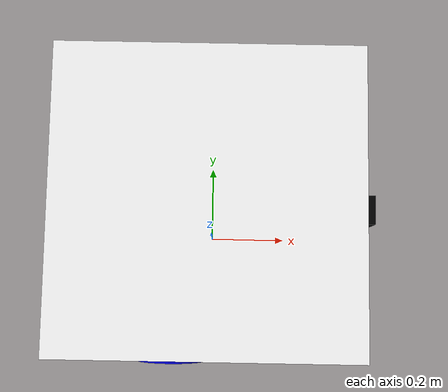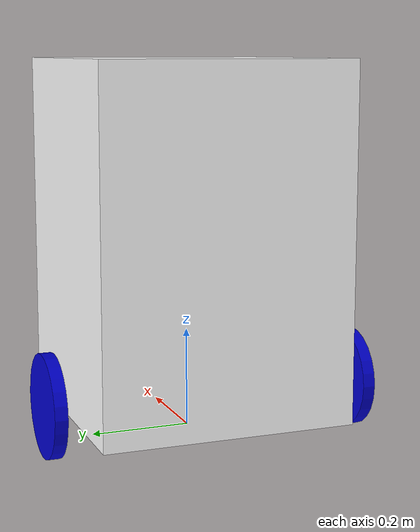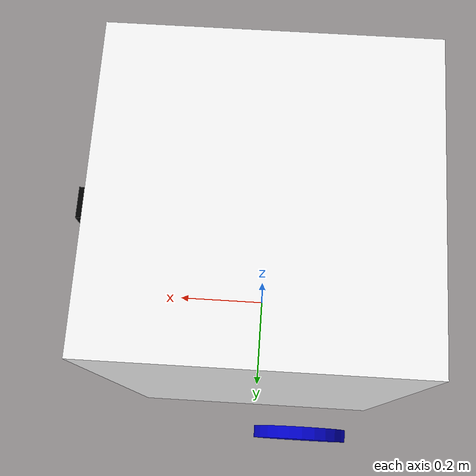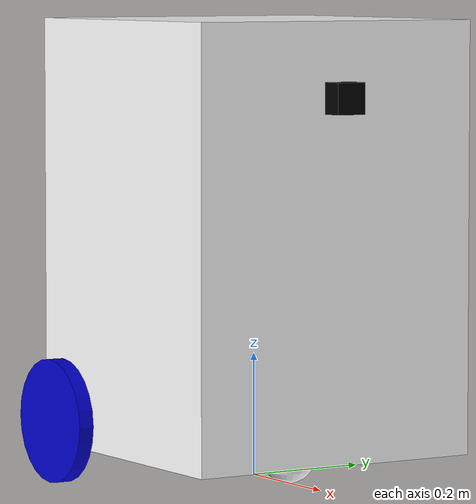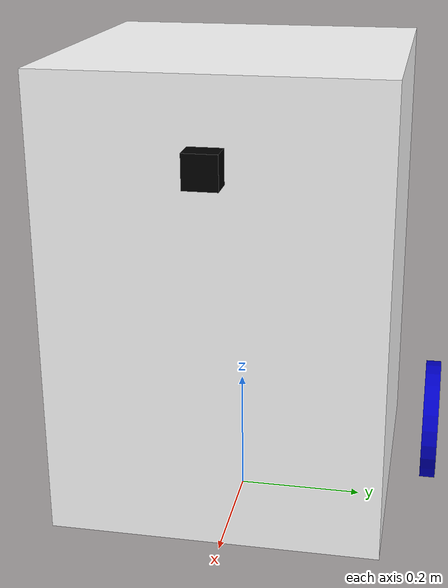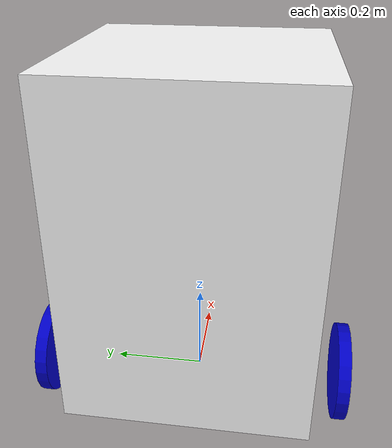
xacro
<?xml version='1.0'?>

<robot name="dd_sim" xmlns:xacro="http://www.ros.org/wiki/xacro">
    <material name="blue">
        <color rgba="0 0 0.8 1"/>
    </material>
    <material name="black">
      <color rgba="0 0 0 1"/>
    </material>
    <material name="white">
      <color rgba="1 1 1 1"/>
    </material>
    <link name='link_0'>
	<origin xyz = "0 0 0.545" rpy = "0 0 0"/>

    <inertial>
      <mass value="10.0"/>
      <origin xyz="0 0 0" rpy=" 0 0 0"/>
      <inertia
          ixx="0.166667" ixy="0" ixz="0"
          iyy="0.166667" iyz="0"
          izz="0.166667"
      />
    </inertial>

    <collision name='collision'>
      <origin xyz = "0 0 0.395" rpy = "0 0 0"/>
      <geometry>
        <box size="0.5 0.5 0.7"/>
      </geometry>
      <surface>
        <friction>
          <ode>
            <mu>1000</mu>
	    <mu2>1000</mu2>
	    <fdir1>0 0 0</fdir1>
            <slip1>0</slip1>
            <slip2>0</slip2>
          </ode>
        </friction>
      </surface>
    </collision>
    <visual name='link_0__visual'>
      <origin xyz="0 0 0.395" rpy=" 0 0 0"/>
      <geometry>
        <box size="0.5 0.5 0.7"/>
      </geometry>
      <material name = "white"/>
    </visual>
    <visual name='link_0_caster__visual'>
      <origin xyz="0.105 0 0.045" rpy=" 0 0 0"/>
      <geometry>
        <sphere radius = "0.045"/>
      </geometry>
      <material name = "white"/>
    </visual>
    <collision name = "collision_caster">
      <origin xyz = "0.145 0 0.0225" rpy = "0 0 0"/>
      <geometry>
        <sphere radius = "0.0225"/>
      </geometry>
      <surface>
        <friction>
          <ode>
            <mu>0.001</mu>
            <mu2>0.001</mu2>
            <fdir1>0 0 0</fdir1>
            <slip1>0</slip1>
            <slip2>0</slip2>
          </ode>
        </friction>
      </surface>
    </collision>
    <visual name='link_0__visual'>
      <origin xyz="0 0 0.395" rpy=" 0 0 0"/>
      <geometry>
        <box size="0.5 0.5 0.7"/>
      </geometry>
      <material name = "white"/>
    </visual>
    <visual name='link_0_caster__visual'>
      <origin xyz="-0.105 0 0.045" rpy=" 0 0 0"/>
      <geometry>
        <sphere radius = "0.045"/>
      </geometry>
      <material name = "white"/>
    </visual>
    <collision name = "collision_caster">
      <origin xyz = "0.145 0 0.0225" rpy = "0 0 0"/>
      <geometry>
        <sphere radius = "0.0225"/>
      </geometry>
      <surface>
        <friction>
          <ode>
            <mu>0.001</mu>
            <mu2>0.001</mu2>
            <fdir1>0 0 0</fdir1>
            <slip1>0</slip1>
            <slip2>0</slip2>
          </ode>
        </friction>
      </surface>
    </collision>
  </link>

  <link name="link_1">
    <collision name="collision">
	    <!--origin xyz = "-0.12 -0.1625 0.045" rpy = "1.5708 -0 0"-->
      <geometry>
        <cylinder radius="0.1" length="0.025"/>
      </geometry>
      <surface>
        <friction>
          <ode>
            <mu>1000</mu>
            <mu2>1000</mu2>
            <fdir1>0 0 0</fdir1>
            <slip1>0</slip1>
            <slip2>0</slip2>
          </ode>
        </friction>
      </surface>
    </collision>
    <visual name="link_1_visual">
	    <!--origin xyz = "-0.12 -0.1625 0.045" rpy = "1.5708 -0 0"-->
      <geometry>
        <cylinder radius="0.1" length="0.025"/>
      </geometry>
      <material name = "blue"/>
    </visual>
    <inertial>
      <!--origin xyz="0 0 0" rpy="0 -0 0"-->
      <mass value="1"/>
      <inertia
        ixx="0.145833" ixy="0.0" ixz="0.0"
        iyy="0.145833" iyz="0.0"
        izz="0.125"/>
    </inertial>
  </link>

  <link name="link_2">
    <collision name="collision">
	    <!--origin xyz = "-0.12 0.1625 0.045" rpy = "1.5708 -0 0"-->
      <geometry>
        <cylinder radius="0.1" length="0.025"/>
      </geometry>
      <surface>
        <friction>
          <ode>
            <mu>1000</mu>
            <mu2>1000</mu2>
            <fdir1>0 0 0</fdir1>
            <slip1>0</slip1>
            <slip2>0</slip2>
          </ode>
        </friction>
      </surface>
    </collision>
    <visual name="link_2_visual">
	    <!--origin xyz = "-0.12 0.1625 0.045" rpy = "1.5708 -0 0"-->
      <geometry>
        <cylinder radius="0.1" length="0.025"/>
      </geometry>
	<material name = "blue"/>
    </visual>
    <inertial>
      <!--origin xyz="0 0 0" rpy="0 -0 0"-->
      <mass value="1"/>
      <inertia
        ixx="0.145833" ixy="0.0" ixz="0.0"
        iyy="0.145833" iyz="0.0"
        izz="0.125"/>
    </inertial>
  </link>
  <link name="camera">
    <collision>
      <geometry>
        <box size="0.05 0.05 0.05"/>
      </geometry>
    </collision>

    <visual>
      <geometry>
        <box size="0.05 0.05 0.05"/>
      </geometry>
      <material name="black"/>
    </visual>

    <inertial>
      <mass value= "0.5" />
      <origin xyz="0 0 0" rpy="0 0 0" />
      <inertia ixx="1e-6" ixy="0" ixz="0" iyy="1e-6" iyz="0" izz="1e-6" />
    </inertial>
  </link>

  <joint type="continuous" name="link_0_JOINT_0">
    <parent link = "link_0"/>
    <child link="link_1"/>
    <axis xyz="0 0 1"/>
    <limit effort="10000" velocity="1000" lower ="-1.79769e+308" upper="1.79769e+308"/>
    <joint_properties damping="1.0" friction="1.0"/>
	    <!--origin xyz = "0 0 0" rpy = "0 0 0"-->
    <origin xyz = "-0.1 -0.3125 0.1" rpy = "1.5708 -0 0"/>
  </joint>

  <joint type="continuous" name="link_0_JOINT_1">
    <child link="link_2"/>
    <parent link="link_0"/>
    <axis xyz="0 0 1"/>
    <limit effort="10000" velocity="1000" lower ="-1.79769e+308" upper="1.79769e+308"/>
    <joint_properties damping="1.0" friction="1.0"/>
	    <!--origin xyz = "0 0 0" rpy = "0 0 0"-->
    <origin xyz = "-0.1 0.3125 0.1" rpy = "1.5708 -0 0"/>
  </joint>

  <joint name="camera_joint" type="fixed">
    <axis xyz="0 1 0" />
    <origin xyz="0.262 0 0.625" rpy="0 0 0"/>
    <parent link="link_0"/>
    <child link="camera"/>
  </joint>

  <gazebo>
	  <plugin name="differential_drive_controller" filename="libgazebo_ros_diff_drive.so">

        <!-- Plugin update rate in Hz -->
        <updateRate>100</updateRate>

        <!-- Name of left joint, defaults to `left_joint` -->
        <leftJoint>link_0_JOINT_0</leftJoint>

        <!-- Name of right joint, defaults to `right_joint` -->
        <rightJoint>link_0_JOINT_1</rightJoint>

        <!-- The distance from the center of one wheel to the other, in meters, defaults to 0.34 m -->
        <wheelSeparation>0.525</wheelSeparation>

        <!-- Diameter of the wheels, in meters, defaults to 0.15 m -->
        <wheelDiameter>0.06</wheelDiameter>

        <!-- Wheel acceleration, in rad/s^2, defaults to 0.0 rad/s^2 -->
        <wheelAcceleration>1.0</wheelAcceleration>

        <!-- Maximum torque which the wheels can produce, in Nm, defaults to 5 Nm -->
        <wheelTorque>5</wheelTorque>

        <!-- Topic to receive geometry_msgs/Twist message commands, defaults to `cmd_vel` -->
        <commandTopic>cmd_vel</commandTopic>

        <!-- Topic to publish nav_msgs/Odometry messages, defaults to `odom` -->
        <odometryTopic>odom</odometryTopic>

        <!-- Odometry frame, defaults to `odom` -->
        <odometryFrame>odom</odometryFrame>

        <!-- Robot frame to calculate odometry from, defaults to `base_footprint` -->
        <robotBaseFrame>link_0</robotBaseFrame>

        <!-- Odometry source, 0 for ENCODER, 1 for WORLD, defaults to WORLD -->
        <odometrySource>1</odometrySource>

        <!-- Set to true to publish transforms for the wheel links, defaults to false -->
        <publishWheelTF>true</publishWheelTF>

        <!-- Set to true to publish transforms for the odometry, defaults to true -->
        <publishOdom>true</publishOdom>
       <!-- Set to true to publish sensor_msgs/JointState on /joint_states for the wheel joints, defaults to false -->
        <publishWheelJointState>true</publishWheelJointState>

        <!-- Set to true to swap right and left wheels, defaults to true -->
	<legacyMode>false</legacyMode>
	</plugin>
    </gazebo>
    <gazebo reference="camera">
    <sensor type="camera" name="camera1">
      <update_rate>30.0</update_rate>
      <camera name="head">
        <horizontal_fov>1.3962634</horizontal_fov>
        <image>
          <width>800</width>
          <height>800</height>
          <format>R8G8B8</format>
        </image>
        <clip>
          <near>0.02</near>
          <far>300</far>
        </clip>
      </camera>
      <plugin name="camera_controller" filename="libgazebo_ros_camera.so">
        <alwaysOn>true</alwaysOn>
        <updateRate>0.0</updateRate>
        <cameraName>mybot/camera1</cameraName>
        <imageTopicName>image_raw</imageTopicName>
        <cameraInfoTopicName>camera_info</cameraInfoTopicName>
        <frameName>camera</frameName>
        <hackBaseline>0.07</hackBaseline>
        <distortionK1>0.0</distortionK1>
        <distortionK2>0.0</distortionK2>
        <distortionK3>0.0</distortionK3>
        <distortionT1>0.0</distortionT1>
        <distortionT2>0.0</distortionT2>
      </plugin>
    </sensor>
  </gazebo>
</robot>
